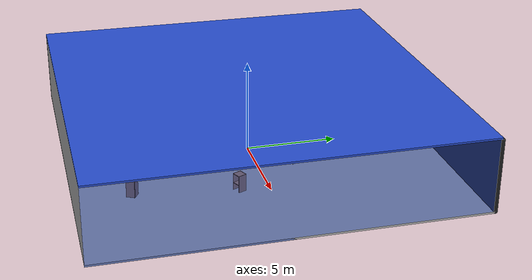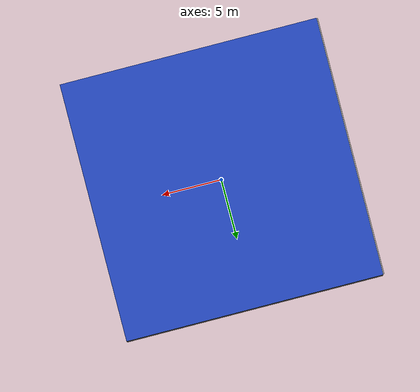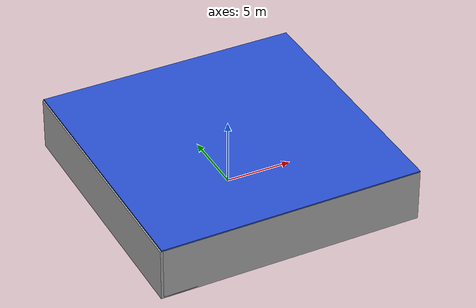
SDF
<sdf version="1.4">
 <world name="default">
  <physics type="ode">
   <max_step_size>0.001</max_step_size>
   <real_time_factor>1</real_time_factor>
   <real_time_update_rate>1000</real_time_update_rate>
   <gravity>0 0 -9.8</gravity>
  </physics>
  <scene><ambient>0.4 0.4 0.4 1</ambient><background>0.7 0.7 0.7 1</background><shadows>1</shadows></scene>
  <model name="Surrounding">
   <static>1</static>
   <link name="Ceiling">
    <collision name="Ceiling_Collision"><geometry><box><size>20 20 0.1</size></box></geometry></collision>
    <visual name="Ceiling_Visual">
     <geometry><box><size>20 20 0.1</size></box></geometry>
     <material>
      <script><uri>file://media/materials/scripts/gazebo.material</uri><name>Gazebo/Blue</name></script>
     </material>
    </visual>
    <pose>0 0 4.05 0 0 0</pose>
   </link>
   <link name="Wall_South">
    <collision name="Wall_South_Collision">
     <geometry><box><size>20 0 4</size></box></geometry>
     <pose>0 0 2 0 -0 0</pose>
    </collision>
    <visual name="Wall_South_Visual">
     <pose>0 0 2 0 -0 0</pose>
     <geometry><box><size>20 0 4</size></box></geometry>
     <material>
      <script><uri>file://media/materials/scripts/gazebo.material</uri><name>Gazebo/CloudySky</name></script>
     </material>
    </visual>
    <velocity_decay><linear>0</linear><angular>0</angular></velocity_decay>
    <pose>0 -10 0 0 -0 0</pose>
   </link>
   <link name="Wall_East">
    <collision name="Wall_21_Collision">
     <geometry><box><size>20 0 4</size></box></geometry>
     <pose>0 0 2 0 -0 0</pose>
    </collision>
    <visual name="Wall_21_Visual">
     <pose>0 0 2 0 -0 0</pose>
     <geometry><box><size>20 0 4</size></box></geometry>
     <material>
      <script><uri>file://media/materials/scripts/gazebo.material</uri><name>Gazebo/BlueTransparent</name></script>
     </material>
    </visual>
    <velocity_decay><linear>0</linear><angular>0</angular></velocity_decay>
    <pose>10 0 0 0 -0 1.5708</pose>
   </link>
   <link name="Wall_North">
    <collision name="Wall_22_Collision">
     <geometry><box><size>20 0.2 4</size></box></geometry>
     <pose>0 0 2 0 -0 0</pose>
    </collision>
    <visual name="Wall_22_Visual">
     <pose>0 0 2 0 -0 0</pose>
     <geometry><box><size>20 0.2 4</size></box></geometry>
     <material>
      <script><uri>file://media/materials/scripts/gazebo.material</uri><name>Gazebo/Black</name></script>
     </material>
    </visual>
    <velocity_decay><linear>0</linear><angular>0</angular></velocity_decay>
    <pose>0 10 0 0 -0 0</pose>
   </link>
   <link name="Wall_West">
    <collision name="Wall_23_Collision">
     <geometry><box><size>20 0.2 4</size></box></geometry>
     <pose>0 0 2 0 -0 0</pose>
    </collision>
    <visual name="Wall_23_Visual">
     <pose>0 0 2 0 -0 0</pose>
     <geometry><box><size>20 0.2 4</size></box></geometry>
     <material>
      <script><uri>file://media/materials/scripts/gazebo.material</uri><name>Gazebo/Pioneer2Body</name></script>
     </material>
    </visual>
    <velocity_decay><linear>0</linear><angular>0</angular></velocity_decay>
    <pose>-10 0 0 0 0 -1.5708</pose>
   </link>
   <link name="Ground_link">
    <collision name="collision">
     <pose>0 0 .05 0 -0 0</pose>
     <geometry><box><size>20 20 0.1</size></box></geometry>
    </collision>
    <visual name="visual">
     <pose>0 0 .05 0 -0 0</pose>
     <geometry><box><size>20 20 0.1</size></box></geometry>
     <material>
      <script><uri>file://media/materials/scripts/gazebo.material</uri><name>Gazebo/JointAnchor</name></script>
     </material>
    </visual>
   </link>
   <static>1</static>
  </model>
  <spherical_coordinates>
   <surface_model>EARTH_WGS84</surface_model>
   <latitude_deg>0</latitude_deg>
   <longitude_deg>0</longitude_deg>
   <elevation>0</elevation>
   <heading_deg>0</heading_deg>
  </spherical_coordinates>
  <light name="lightball_0" type="diffuse">
   <diffuse>0.8 0.8 0.8 1</diffuse>
   <specular>0.2 0.2 0.2 1</specular>
   <attenuation>
    <range>100</range>
    <constant>0.7</constant>
    <linear>0.01</linear>
    <quadratic>0.001</quadratic>
   </attenuation>
   <direction>-0.5 0.1 -0.9</direction>
   <pose>-7.38536607132 0.954307563526 2.9169023037 0 0 0</pose>
  </light>
  <light name="lightball_1" type="diffuse">
   <diffuse>0.8 0.8 0.8 1</diffuse>
   <specular>0.2 0.2 0.2 1</specular>
   <attenuation>
    <range>100</range>
    <constant>0.7</constant>
    <linear>0.01</linear>
    <quadratic>0.001</quadratic>
   </attenuation>
   <direction>-0.5 0.1 -0.9</direction>
   <pose>3.50678357637 5.86943071174 3.25991141389 0 0 0</pose>
  </light>
  <light name="lightball_2" type="diffuse">
   <diffuse>0.8 0.8 0.8 1</diffuse>
   <specular>0.2 0.2 0.2 1</specular>
   <attenuation>
    <range>100</range>
    <constant>0.7</constant>
    <linear>0.01</linear>
    <quadratic>0.001</quadratic>
   </attenuation>
   <direction>-0.5 0.1 -0.9</direction>
   <pose>6.05552381255 -4.99793565721 2.47518270192 0 0 0</pose>
  </light>
  <light name="lightball_3" type="diffuse">
   <diffuse>0.8 0.8 0.8 1</diffuse>
   <specular>0.2 0.2 0.2 1</specular>
   <attenuation>
    <range>100</range>
    <constant>0.7</constant>
    <linear>0.01</linear>
    <quadratic>0.001</quadratic>
   </attenuation>
   <direction>-0.5 0.1 -0.9</direction>
   <pose>2.28543498265 0.00711835428468 0.87751865816 0 0 0</pose>
  </light>
  <light name="lightball_4" type="diffuse">
   <diffuse>0.8 0.8 0.8 1</diffuse>
   <specular>0.2 0.2 0.2 1</specular>
   <attenuation>
    <range>100</range>
    <constant>0.7</constant>
    <linear>0.01</linear>
    <quadratic>0.001</quadratic>
   </attenuation>
   <direction>-0.5 0.1 -0.9</direction>
   <pose>9.53013299407 -5.57799407122 3.7208325053 0 0 0</pose>
  </light>
  <light name="lightball_5" type="diffuse">
   <diffuse>0.8 0.8 0.8 1</diffuse>
   <specular>0.2 0.2 0.2 1</specular>
   <attenuation>
    <range>100</range>
    <constant>0.7</constant>
    <linear>0.01</linear>
    <quadratic>0.001</quadratic>
   </attenuation>
   <direction>-0.5 0.1 -0.9</direction>
   <pose>-0.364589511918 8.45454654032 2.04880939451 0 0 0</pose>
  </light>
  <light name="lightball_6" type="diffuse">
   <diffuse>0.8 0.8 0.8 1</diffuse>
   <specular>0.2 0.2 0.2 1</specular>
   <attenuation>
    <range>100</range>
    <constant>0.7</constant>
    <linear>0.01</linear>
    <quadratic>0.001</quadratic>
   </attenuation>
   <direction>-0.5 0.1 -0.9</direction>
   <pose>-2.97743257773 8.28270234817 2.52283393803 0 0 0</pose>
  </light>
  <light name="lightball_7" type="diffuse">
   <diffuse>0.8 0.8 0.8 1</diffuse>
   <specular>0.2 0.2 0.2 1</specular>
   <attenuation>
    <range>100</range>
    <constant>0.7</constant>
    <linear>0.01</linear>
    <quadratic>0.001</quadratic>
   </attenuation>
   <direction>-0.5 0.1 -0.9</direction>
   <pose>2.29325857709 -7.2443322518 2.66951605504 0 0 0</pose>
  </light>
  <include><uri>model://cabinet</uri><pose>-2.03879234499 -7.1252841353 0 0 0 2.93446601894</pose></include>
  <include>
   <uri>model://robocup_3Dsim_goal</uri>
   <pose>-1.23230724197 -5.19139091859 0 0 0 2.32656776457</pose>
  </include>
  <include>
   <uri>model://construction_cone</uri>
   <pose>1.11528219823 -7.03202656693 0 0 0 1.97433601886</pose>
  </include>
  <include><uri>model://table</uri><pose>1.90233224549 1.75066583599 0 0 0 0.613483172664</pose></include>
  <include><uri>model://cabinet</uri><pose>4.0187203469 -6.9849676267 0 0 0 1.07071170336</pose></include>
  <include><uri>model://cabinet</uri><pose>4.7837748791 -1.61126251193 0 0 0 2.00142324445</pose></include>
 </world>
</sdf>

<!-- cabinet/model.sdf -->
<sdf version="1.5">
  <model name="cabinet">
    <static>true</static>
    <link name="cabinet_bottom_plate">
      <inertial>
        <pose>0 0 -1 0 0 0</pose>
        <inertia>
          <ixx>2.050000</ixx>
          <ixy>0</ixy>
          <ixz>0</ixz>
          <iyy>2.050000</iyy>
          <iyz>0</iyz>
          <izz>2.050000</izz>
        </inertia>
        <mass>25.000000</mass>
      </inertial>
      <collision name="cabinet_bottom_plate_geom">
        <pose>0 0 0.010000 0 0 0</pose>
        <geometry>
          <box>
            <size>0.450000 0.450000 0.020000</size>
          </box>
        </geometry>
      </collision>
      <visual name="cabinet_bottom_plate_geom_visual">
        <pose>0 0 0.010000 0 0 0</pose>
        <geometry>
          <box>
            <size>0.450000 0.450000 0.020000</size>
          </box>
        </geometry>
        <material>
          <script>
            <uri>model://media/materials/scripts/gazebo.material</uri>
            <name>Gazebo/Wood</name>
          </script>
        </material>
      </visual>
      <collision name="cabinet_bottom_plate_geom_cabinet_back_plate">
        <pose>0.235000 0 0.510000 0 0 0</pose>
        <geometry>
          <box>
            <size>0.020000 0.450000 1.020000</size>
          </box>
        </geometry>
      </collision>
      <visual name="cabinet_bottom_plate_geom_cabinet_back_plate_visual">
        <pose>0.235000 0 0.510000 0 0 0</pose>
        <geometry>
          <box>
            <size>0.020000 0.450000 1.020000</size>
          </box>
        </geometry>
        <material>
          <script>
            <uri>model://media/materials/scripts/gazebo.material</uri>
            <name>Gazebo/Wood</name>
          </script>
        </material>
      </visual>
      <collision name="cabinet_bottom_plate_geom_cabinet_left_plate">
        <pose>0 0.235000 0.510000 0 0 0</pose>
        <geometry>
          <box>
            <size>0.450000 0.020000 1.020000</size>
          </box>
        </geometry>
      </collision>
      <visual name="cabinet_bottom_plate_geom_cabinet_left_plate_visual">
        <pose>0 0.235000 0.510000 0 0 0</pose>
        <geometry>
          <box>
            <size>0.450000 0.020000 1.020000</size>
          </box>
        </geometry>
        <material>
          <script>
            <uri>model://media/materials/scripts/gazebo.material</uri>
            <name>Gazebo/Wood</name>
          </script>
        </material>
      </visual>
      <collision name="cabinet_bottom_plate_geom_cabinet_middle_plate">
        <pose>0 0 0.510000 0 0 0</pose>
        <geometry>
          <box>
            <size>0.450000 0.450000 0.020000</size>
          </box>
        </geometry>
      </collision>
      <visual name="cabinet_bottom_plate_geom_cabinet_middle_plate_visual">
        <pose>0 0 0.510000 0 0 0</pose>
        <geometry>
          <box>
            <size>0.450000 0.450000 0.020000</size>
          </box>
        </geometry>
        <material>
          <script>
            <uri>model://media/materials/scripts/gazebo.material</uri>
            <name>Gazebo/Wood</name>
          </script>
        </material>
      </visual>
      <collision name="cabinet_bottom_plate_geom_cabinet_right_plate">
        <pose>0 -0.235000 0.510000 0 0 0</pose>
        <geometry>
          <box>
            <size>0.450000 0.020000 1.020000</size>
          </box>
        </geometry>
      </collision>
      <visual name="cabinet_bottom_plate_geom_cabinet_right_plate_visual">
        <pose>0 -0.235000 0.510000 0 0 0</pose>
        <geometry>
          <box>
            <size>0.450000 0.020000 1.020000</size>
          </box>
        </geometry>
        <material>
          <script>
            <uri>model://media/materials/scripts/gazebo.material</uri>
            <name>Gazebo/Wood</name>
          </script>
        </material>
      </visual>
      <collision name="cabinet_bottom_plate_geom_cabinet_top_plate">
        <pose>0 0 1.010000 0 0 0</pose>
        <geometry>
          <box>
            <size>0.450000 0.450000 0.020000</size>
          </box>
        </geometry>
      </collision>
      <visual name="cabinet_bottom_plate_geom_cabinet_top_plate_visual">
        <pose>0 0 1.010000 0 0 0</pose>
        <geometry>
          <box>
            <size>0.450000 0.450000 0.020000</size>
          </box>
        </geometry>
        <material>
          <script>
            <uri>model://media/materials/scripts/gazebo.material</uri>
            <name>Gazebo/Wood</name>
          </script>
        </material>
      </visual>
    </link>
  </model>
</sdf>

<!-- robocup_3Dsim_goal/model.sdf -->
<sdf version="1.5">
  <model name="robocup_3d_goal">
    <static>true</static>
    <link name="left_post">
      <pose>0 1.05 0.45 0 0 0</pose>
      <collision name="collision">
        <geometry>
          <cylinder>
            <radius>0.05</radius>
            <length>0.9</length>
          </cylinder>
        </geometry>
      </collision>
      <visual name="visual">
        <geometry>
          <cylinder>
            <radius>0.05</radius>
            <length>0.9</length>
          </cylinder>
        </geometry>
        <material>
          <script>
            <uri>file://media/materials/scripts/gazebo.material</uri>
            <name>Gazebo/ZincYellow</name>
          </script>
        </material>
      </visual>
    </link>
    <link name="left_support_horiz_lower">
      <pose>0.30 1.05 0.01 0 0 0</pose>
      <collision name="collision">
        <geometry>
          <box>
            <size>0.50 0.02 0.02</size>
          </box>
        </geometry>
      </collision>
      <visual name="visual">
        <geometry>
          <box>
            <size>0.50 0.02 0.02</size>
          </box>
        </geometry>
        <material>
          <script>
            <uri>file://media/materials/scripts/gazebo.material</uri>
            <name>Gazebo/White</name>
          </script>
        </material>
      </visual>
    </link>
    <link name="left_support_horiz_upper">
      <pose>0.30 1.05 0.79 0 0 0</pose>
      <collision name="collision">
        <geometry>
          <box>
            <size>0.50 0.02 0.02</size>
          </box>
        </geometry>
      </collision>
      <visual name="visual">
        <geometry>
          <box>
            <size>0.50 0.02 0.02</size>
          </box>
        </geometry>
        <material>
          <script>
            <uri>file://media/materials/scripts/gazebo.material</uri>
            <name>Gazebo/White</name>
          </script>
        </material>
      </visual>
    </link>
    <link name="left_support_vertical">
      <pose>0.56 1.05 0.4 0 1.5708 0</pose>
      <collision name="collision">
        <geometry>
          <box>
            <size>0.80 0.02 0.02</size>
          </box>
        </geometry>
      </collision>
      <visual name="visual">
        <geometry>
          <box>
            <size>0.80 0.02 0.02</size>
          </box>
        </geometry>
        <material>
          <script>
            <uri>file://media/materials/scripts/gazebo.material</uri>
            <name>Gazebo/White</name>
          </script>
        </material>
      </visual>
    </link>
    <link name="right_support_horiz_lower">
      <pose>0.30 -1.05 0.01 0 0 0</pose>
      <collision name="collision">
        <geometry>
          <box>
            <size>0.50 0.02 0.02</size>
          </box>
        </geometry>
      </collision>
      <visual name="visual">
        <geometry>
          <box>
            <size>0.50 0.02 0.02</size>
          </box>
        </geometry>
        <material>
          <script>
            <uri>file://media/materials/scripts/gazebo.material</uri>
            <name>Gazebo/White</name>
          </script>
        </material>
      </visual>
    </link>
    <link name="right_support_horiz_upper">
      <pose>0.30 -1.05 0.79 0 0 0</pose>
      <collision name="collision">
        <geometry>
          <box>
            <size>0.50 0.02 0.02</size>
          </box>
        </geometry>
      </collision>
      <visual name="visual">
        <geometry>
          <box>
            <size>0.50 0.02 0.02</size>
          </box>
        </geometry>
        <material>
          <script>
            <uri>file://media/materials/scripts/gazebo.material</uri>
            <name>Gazebo/White</name>
          </script>
        </material>
      </visual>
    </link>
    <link name="right_support_vertical">
      <pose>0.56 -1.05 0.4 0 1.5708 0</pose>
      <collision name="collision">
        <geometry>
          <box>
            <size>0.80 0.02 0.02</size>
          </box>
        </geometry>
      </collision>
      <visual name="visual">
        <geometry>
          <box>
            <size>0.80 0.02 0.02</size>
          </box>
        </geometry>
        <material>
          <script>
            <uri>file://media/materials/scripts/gazebo.material</uri>
            <name>Gazebo/White</name>
          </script>
        </material>
      </visual>
    </link>
    <link name="center_support_horiz_lower">
      <pose>0.56 0 0.01 0 1.5708 0</pose>
      <collision name="collision">
        <geometry>
          <box>
            <size>0.02 2.08 0.02</size>
          </box>
        </geometry>
      </collision>
      <visual name="visual">
        <geometry>
          <box>
            <size>0.02 2.08 0.02</size>
          </box>
        </geometry>
        <material>
          <script>
            <uri>file://media/materials/scripts/gazebo.material</uri>
            <name>Gazebo/White</name>
          </script>
        </material>
      </visual>
    </link>
    <link name="center_support_horiz_upper">
      <pose>0.56 0 0.79 0 1.5708 0</pose>
      <collision name="collision">
        <geometry>
          <box>
            <size>0.02 2.08 0.02</size>
          </box>
        </geometry>
      </collision>
      <visual name="visual">
        <geometry>
          <box>
            <size>0.02 2.08 0.02</size>
          </box>
        </geometry>
        <material>
          <script>
            <uri>file://media/materials/scripts/gazebo.material</uri>
            <name>Gazebo/White</name>
          </script>
        </material>
      </visual>
    </link>
    <link name="right_post">
      <pose>0 -1.05 0.45 0 0 0</pose>
      <collision name="collision">
        <geometry>
          <cylinder>
            <radius>0.05</radius>
            <length>0.9</length>
          </cylinder>
        </geometry>
      </collision>
      <visual name="visual">
        <geometry>
          <cylinder>
            <radius>0.05</radius>
            <length>0.9</length>
          </cylinder>
        </geometry>
        <material>
          <script>
            <uri>file://media/materials/scripts/gazebo.material</uri>
            <name>Gazebo/ZincYellow</name>
          </script>
        </material>
      </visual>
    </link>
    <link name="crossbar">
      <pose>0 0 0.85 1.57 1.57 0</pose>
      <collision name="collision">
        <geometry>
          <cylinder>
            <radius>0.05</radius>
            <length>2.0</length>
          </cylinder>
        </geometry>
      </collision>
      <visual name="visual">
        <geometry>
          <cylinder>
            <radius>0.05</radius>
            <length>2.0</length>
          </cylinder>
        </geometry>
        <material>
          <script>
            <uri>file://media/materials/scripts/gazebo.material</uri>
            <name>Gazebo/ZincYellow</name>
          </script>
        </material>
      </visual>
    </link>
    <link name="center_net">
      <pose>0.56 0 0.40 0 0 0</pose>
      <collision name="collision">
        <geometry>
          <box>
            <size>0.01 2.1 0.80</size>
          </box>
        </geometry>
      </collision>
      <visual name="visual">
        <geometry>
          <box>
            <size>0.01 2.1 0.80</size>
          </box>
        </geometry>
        <material>
          <script>
            <uri>model://../model_source/models/robocup09_spl_field/materials/scripts/</uri>
            <uri>model://../model_source/models/robocup09_spl_field/materials/textures/</uri>
            <name>RoboCup/Net</name>
          </script>
        </material>
      </visual>
    </link>
    <link name="left_net">
      <pose>0.30 1.05 0.40 0 0 0</pose>
      <collision name="collision">
        <geometry>
          <box>
            <size>0.50 0.01 0.76</size>
          </box>
        </geometry>
      </collision>
      <visual name="visual">
        <geometry>
          <box>
            <size>0.50 0.01 0.76</size>
          </box>
        </geometry>
        <material>
          <script>
            <uri>model://../model_source/models/robocup09_spl_field/materials/scripts/</uri>
            <uri>model://../model_source/models/robocup09_spl_field/materials/textures/</uri>
            <name>RoboCup/Net</name>
          </script>
        </material>
      </visual>
    </link>
    <link name="right_net">
      <pose>0.30 -1.05 0.40 0 0 0</pose>
      <collision name="collision">
        <geometry>
          <box>
            <size>0.50 0.01 0.76</size>
          </box>
        </geometry>
      </collision>
      <visual name="visual">
        <geometry>
          <box>
            <size>0.50 0.01 0.76</size>
          </box>
        </geometry>
        <material>
          <script>
            <uri>model://../model_source/models/robocup09_spl_field/materials/scripts/</uri>
            <uri>model://../model_source/models/robocup09_spl_field/materials/textures/</uri>
            <name>RoboCup/Net</name>
          </script>
        </material>
      </visual>
    </link>
  </model>
</sdf>

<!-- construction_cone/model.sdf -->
<sdf version="1.5">
  <model name="Construction Cone">
    <link name="link">
      <collision name="collision">
        <geometry>
          <mesh>
            <scale>10 10 10</scale>
            <uri>file://isr-testbed/construction_cone/meshes/construction_cone.dae</uri>
          </mesh>
        </geometry>
      </collision>
      <visual name="visual">
        <geometry>
          <mesh>
            <scale>10 10 10</scale>
            <uri>file://isr-testbed/construction_cone/meshes/construction_cone.dae</uri>
          </mesh>
        </geometry>
      </visual>
    </link>
  </model>
</sdf>

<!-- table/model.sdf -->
<sdf version="1.5">
  <model name="table">
    <static>true</static>
    <link name="link">
      <collision name="surface">
        <pose>0 0 1.0 0 0 0</pose>
        <geometry>
          <box>
            <size>1.5 0.8 0.03</size>
          </box>
        </geometry>
        <surface>
          <friction>
            <ode>
              <mu>0.6</mu>
              <mu2>0.6</mu2>
            </ode>
          </friction>
        </surface>
      </collision>
      <visual name="visual1">
        <pose>0 0 1.0 0 0 0</pose>
        <geometry>
          <box>
            <size>1.5 0.8 0.03</size>
          </box>
        </geometry>
        <material>
          <script>
            <uri>model://media/materials/scripts/gazebo.material</uri>
            <name>Gazebo/Wood</name>
          </script>
        </material>
      </visual>
      <collision name="front_left_leg">
        <pose>0.68 0.38 0.5 0 0 0</pose>
        <geometry>
          <cylinder>
            <radius>0.02</radius>
            <length>1.0</length>
          </cylinder>
        </geometry>
      </collision>
      <visual name="front_left_leg">
        <pose>0.68 0.38 0.5 0 0 0</pose>
        <geometry>
          <cylinder>
            <radius>0.02</radius>
            <length>1.0</length>
          </cylinder>
        </geometry>
        <material>
          <script>
            <uri>model://media/materials/scripts/gazebo.material</uri>
            <name>Gazebo/Grey</name>
          </script>
        </material>
      </visual>
      <collision name="front_right_leg">
        <pose>0.68 -0.38 0.5 0 0 0</pose>
        <geometry>
          <cylinder>
            <radius>0.02</radius>
            <length>1.0</length>
          </cylinder>
        </geometry>
      </collision>
      <visual name="front_right_leg">
        <pose>0.68 -0.38 0.5 0 0 0</pose>
        <geometry>
          <cylinder>
            <radius>0.02</radius>
            <length>1.0</length>
          </cylinder>
        </geometry>
        <material>
          <script>
            <uri>model://media/materials/scripts/gazebo.material</uri>
            <name>Gazebo/Grey</name>
          </script>
        </material>
      </visual>
      <collision name="back_right_leg">
        <pose>-0.68 -0.38 0.5 0 0 0</pose>
        <geometry>
          <cylinder>
            <radius>0.02</radius>
            <length>1.0</length>
          </cylinder>
        </geometry>
      </collision>
      <visual name="back_right_leg">
        <pose>-0.68 -0.38 0.5 0 0 0</pose>
        <geometry>
          <cylinder>
            <radius>0.02</radius>
            <length>1.0</length>
          </cylinder>
        </geometry>
        <material>
          <script>
            <uri>model://media/materials/scripts/gazebo.material</uri>
            <name>Gazebo/Grey</name>
          </script>
        </material>
      </visual>
      <collision name="back_left_leg">
        <pose>-0.68 0.38 0.5 0 0 0</pose>
        <geometry>
          <cylinder>
            <radius>0.02</radius>
            <length>1.0</length>
          </cylinder>
        </geometry>
      </collision>
      <visual name="back_left_leg">
        <pose>-0.68 0.38 0.5 0 0 0</pose>
        <geometry>
          <cylinder>
            <radius>0.02</radius>
            <length>1.0</length>
          </cylinder>
        </geometry>
        <material>
          <script>
            <uri>model://media/materials/scripts/gazebo.material</uri>
            <name>Gazebo/Grey</name>
          </script>
        </material>
      </visual>
    </link>
  </model>
</sdf>
